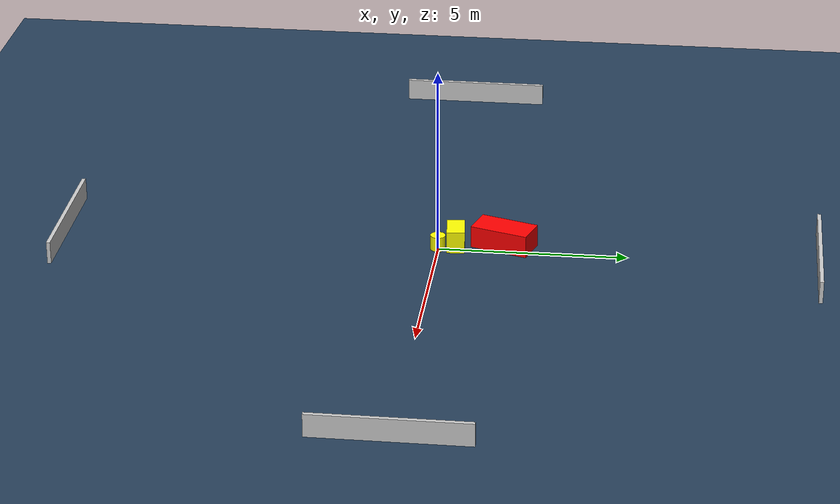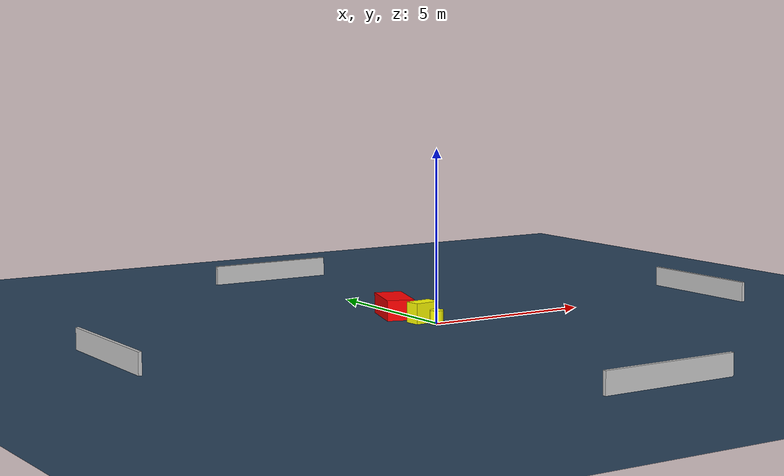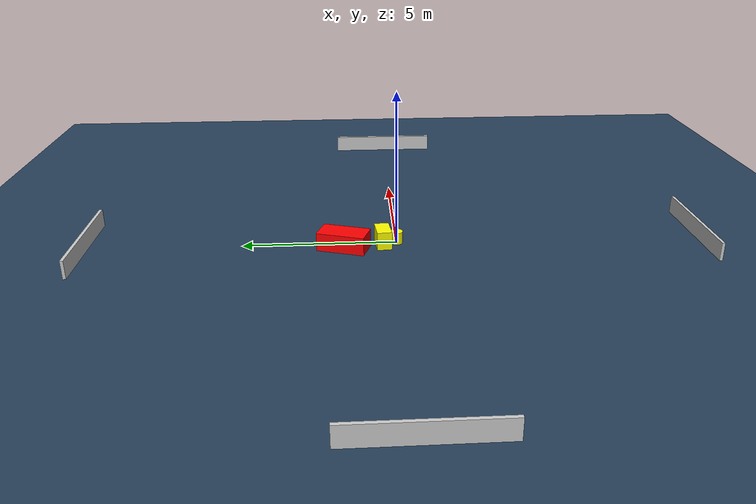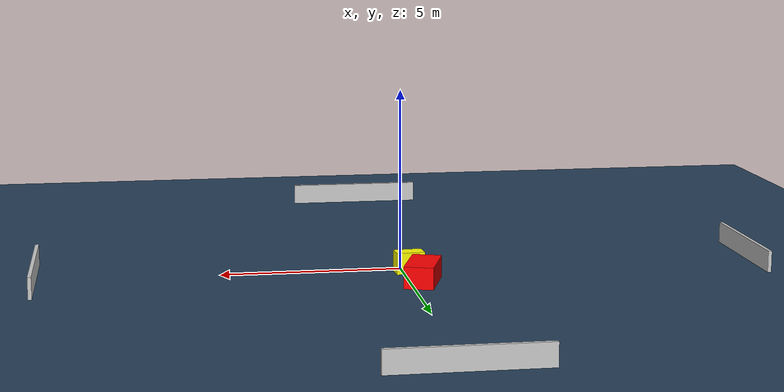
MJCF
<?xml version="1.0" ?>
<mujoco model="generated_environment">
  <option timestep="0.01" integrator="RK4" cone="elliptic"/>
  <default>
    <geom density="1"/>
  </default>
  <asset>
    <texture builtin="gradient" height="3072" name="skybox" rgb1="0.3 0.5 0.7" rgb2="0 0 0" type="skybox" width="512"/>
    <texture builtin="checker" height="300" name="groundplane" rgb1="0.2 0.3 0.4" rgb2="0.1 0.2 0.3" type="2d" width="300"/>
    <material name="groundplane" reflectance="0.2" texrepeat="5 5" texture="groundplane"/>
  </asset>
  <worldbody>
    <light dir="0 0 -1" directional="true" pos="0 0 1.5"/>
    <geom condim="3" friction="0.5 0.005 0.001" material="groundplane" name="floor" pos="0 0 0" size="0 0 0.05" type="plane"/>
    <body name="walls">
      <geom name="wall_1" condim="4" pos="-10.0 0.0 0.3" rgba="0.800000011920929 0.800000011920929 0.800000011920929 1.0" size="0.05 2.0 0.3" type="box"/>
      <geom name="wall_2" condim="4" pos="10.0 0.0 0.3" rgba="0.800000011920929 0.800000011920929 0.800000011920929 1.0" size="0.05 2.0 0.3" type="box"/>
      <geom name="wall_3" condim="4" pos="0.0 -10.0 0.3" rgba="0.800000011920929 0.800000011920929 0.800000011920929 1.0" size="2.0 0.05 0.3" type="box"/>
      <geom name="wall_4" condim="4" pos="0.0 10.0 0.3" rgba="0.800000011920929 0.800000011920929 0.800000011920929 1.0" size="2.0 0.05 0.3" type="box"/>
    </body>
    <body name="robot">
      <joint name="joint_x" type="slide" pos="0 0 0" axis="1 0 0"/>
      <joint name="joint_y" type="slide" pos="0 0 0" axis="0 1 0"/>
      <geom name="robot" type="cylinder" pos="0.0 0.0 0.2" size="0.2 0.2 0.0" mass="5.0" friction="1.0 0.005 0.0001" condim="4" rgba="1.0 1.0 0.0 1.0"/>
    </body>
    <body name="obstacle_1_movable">
      <geom name="obstacle_1_movable" condim="4" pos="-0.17179409339777807 0.4562245844445009 0.3" euler="0 0 275.36417006444594" friction="0.0 0.005 0.001" rgba="1.0 1.0 0.0 1.0" size="0.23700282814622814 0.3946367307823295 0.3" type="box" mass="0.1"/>
      <joint type="free"/>
    </body>
    <body name="obstacle_2_static">
      <geom name="obstacle_2_static" condim="4" pos="-0.3400310048859675 1.7259433236165718 0.3" euler="0 0 341.8976737564791" friction="0.0 0.005 0.001" rgba="1.0 0.0 0.0 1.0" size="0.40413532512685674 0.7878860329240012 0.3" type="box"/>
    </body>
  </worldbody>
  <actuator>
    <motor name="actuator_x" joint="joint_x" gear="1" ctrlrange="-1 1"/>
    <motor name="actuator_y" joint="joint_y" gear="1" ctrlrange="-1 1"/>
  </actuator>
</mujoco>
